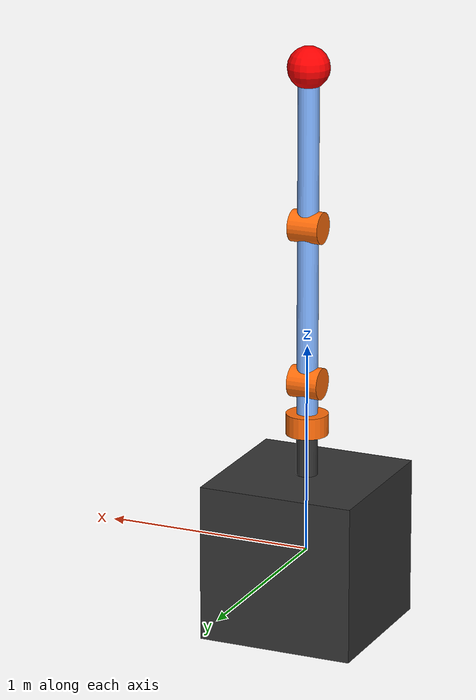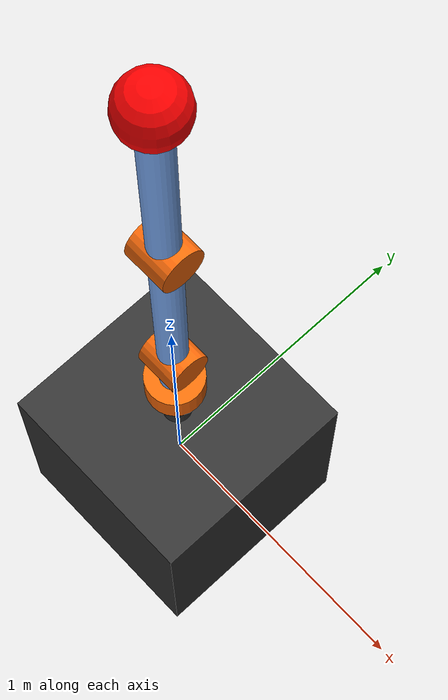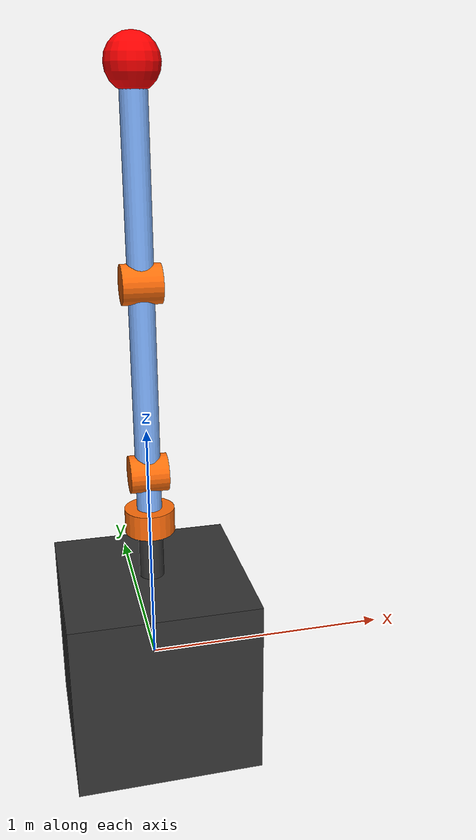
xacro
<?xml version="1.0" encoding="UTF-8"?>

<robot name="sc_3dof" xmlns:xacro="http://www.ros.org/wiki/xacro">

  <!-- Colors -->
  <material name="Grey">
    <color rgba="0.2 0.2 0.2 1.0"/>
  </material>
  <material name="Orange">
    <color rgba="1.0 0.423529411765 0.0392156862745 1.0"/>
  </material>
  <material name="Blue">
  <color rgba="0.5 0.7 1.0 1.0"/>
  </material>
  <material name="Red">
    <color rgba="1 0 0 1.0"/>
  </material>

  <!--Spacecraft-->
  <link name="Spacecraft"> <!--base_link-->
    <inertial>
      <origin rpy="0 0 0" xyz="0 0 0"/>
      <mass value="100"/>
      <inertia ixx="9.3" ixy="0" ixz="0" iyy="9.3" iyz="0" izz="9.3"/>
    </inertial>
    <visual>
      <origin rpy="0 0 0" xyz="0 0 0"/>
      <geometry>
        <box size="0.75 0.75 0.75" />
      </geometry>
      <material name="Grey"/>
    </visual>
  </link>
  <!-- Joint to Manipulator -->
  <joint name="Spacecraft_Manipulator_Joint" type="fixed">
    <parent link="Spacecraft"/>
    <child link="Link_0"/>
    <origin rpy="0 0 0" xyz="0 0 0.375"/>
    <axis xyz="0 0 1"/>
  </joint>

  <!--Manipulator-->
  <!-- Link 0 -->
  <link name="Link_0">
    <inertial>
      <origin rpy="0 0 0" xyz="0 0 0.125"/>
      <mass value="5"/>
      <inertia ixx="0.05" ixy="0" ixz="0" iyy="0.05" iyz="0" izz="0.05"/>
    </inertial>
    <visual>
      <origin rpy="0 0 0" xyz="0 0 0.125"/>
      <geometry>
        <cylinder radius="0.05" length="0.25"/>
      </geometry>
      <material name="Grey"/>
    </visual>
  </link>
  <!-- Joint 1 -->
  <joint name="Joint_1" type="revolute">
    <parent link="Link_0"/>
    <child link="Link_1"/>
    <origin rpy="0 0 0" xyz="0 0 0.25"/>
    <axis xyz="0 0 1"/>
    <limit effort="1000.0" lower="-3.14" upper="3.14" velocity="0.5"/>
  </joint>
    <!-- Link 1 -->
  <link name="Link_1">
    <inertial>
      <origin rpy="0 0 0" xyz="0 0 0.1"/>
      <mass value="5"/>
      <inertia ixx="0.05" ixy="0" ixz="0" iyy="0.05" iyz="0" izz="0.05"/>
    </inertial>
    <visual>
      <origin rpy="0 0 0" xyz="0 0 0.1"/>
      <geometry>
        <cylinder radius="0.05" length="0.2"/>
      </geometry>
      <material name="Blue"/>
    </visual>
    <visual>
      <origin rpy="0 0 0" xyz="0 0 0"/>
      <geometry>
        <cylinder radius="0.1" length="0.1"/>
      </geometry>
      <material name="Orange"/>
    </visual>
  </link>
  <!-- Joint 2 -->
  <joint name="Joint_2" type="revolute">
    <parent link="Link_1"/>
    <child link="Link_2"/>
    <origin rpy="0 0 0" xyz="0 0 0.2"/>
    <axis xyz="1 0 0"/>
    <limit effort="1000.0" lower="-3.14" upper="3.14" velocity="0.5"/>
  </joint>
    <!-- Link 2 -->
  <link name="Link_2">
    <inertial>
      <origin rpy="0 0 0" xyz="0 0 0.375"/>
      <mass value="10"/>
      <inertia ixx="0.1" ixy="0" ixz="0" iyy="0.1" iyz="0" izz="0.1"/>
    </inertial>
    <visual>
      <origin rpy="0 0 0" xyz="0 0 0.375"/>
      <geometry>
        <cylinder radius="0.05" length="0.75"/>
      </geometry>
      <material name="Blue"/>
    </visual>
    <visual>
      <origin rpy="0 1.5708 0" xyz="0 0 0"/>
      <geometry>
        <cylinder radius="0.075" length="0.15"/>
      </geometry>
      <material name="Orange"/>
    </visual>
  </link>
  <!-- Joint 3 -->
  <joint name="Joint_3" type="revolute">
    <parent link="Link_2"/>
    <child link="Link_3"/>
    <origin rpy="0 0 0" xyz="0 0 0.75"/>
    <axis xyz="1 0 0"/>
    <limit effort="1000.0" lower="-3.14" upper="3.14" velocity="0.5"/>
  </joint>
    <!-- Link 3 -->
  <link name="Link_3">
    <inertial>
      <origin rpy="0 0 0" xyz="0 0 0.375"/>
      <mass value="10"/>
      <inertia ixx="0.1" ixy="0" ixz="0" iyy="0.1" iyz="0" izz="0.1"/>
    </inertial>
    <visual>
      <origin rpy="0 0 0" xyz="0 0 0.375"/>
      <geometry>
        <cylinder radius="0.05" length="0.75"/>
      </geometry>
      <material name="Blue"/>
    </visual>
    <visual>
      <origin rpy="0 1.5708 0" xyz="0 0 0"/>
      <geometry>
        <cylinder radius="0.075" length="0.15"/>
      </geometry>
      <material name="Orange"/>
    </visual>
  </link>
  <!-- Joint End-Effector -->
  <joint name="Joint_EE" type="fixed">
    <parent link="Link_3"/>
    <child link="Link_EE"/>
    <origin rpy="0 0 0" xyz="0 0 0.75"/>
    <axis xyz="1 0 0"/>
  </joint>
    <!-- End-Effector -->
  <link name="Link_EE">
    <inertial>
      <origin rpy="0 0 0" xyz="0 0 0"/>
      <mass value="0"/>
      <inertia ixx="0" ixy="0" ixz="0" iyy="0" iyz="0" izz="0"/>
    </inertial>
    <visual>
      <origin rpy="0 0 0" xyz="0 0 0"/>
      <geometry>
        <sphere radius="0.1"/>
      </geometry>
      <material name="Red"/>
    </visual>
  </link>

</robot>
